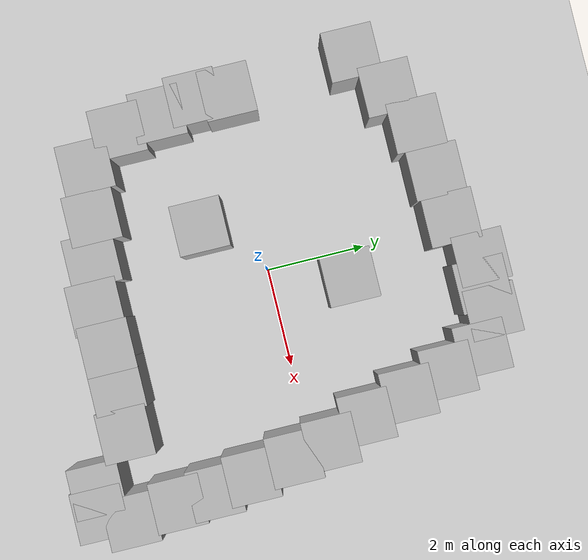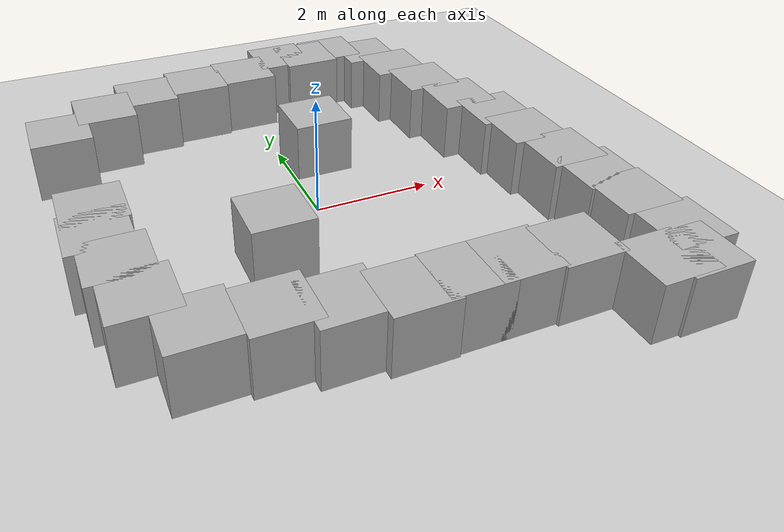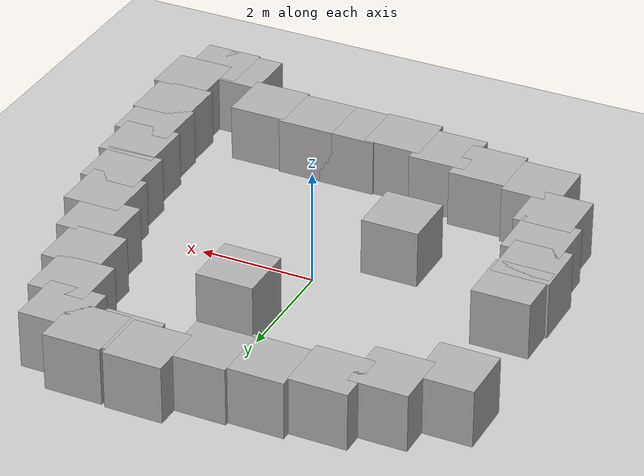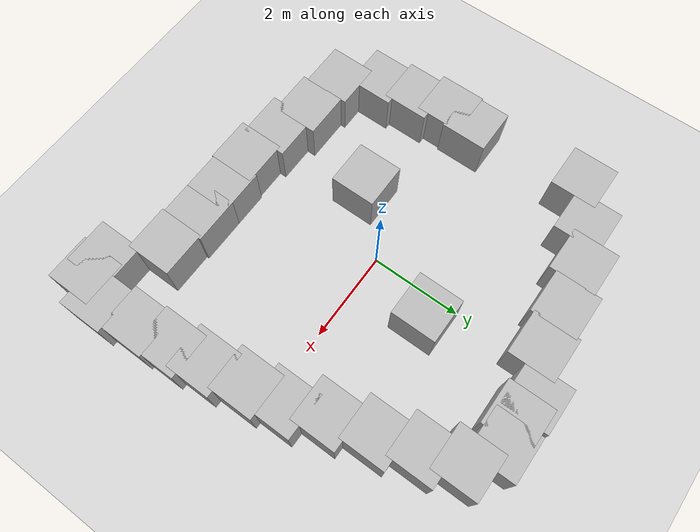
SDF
<sdf version="1.10">
 <world name="empty">
  <physics name="1ms" type="ignored">
   <max_step_size>0.001</max_step_size>
   <real_time_factor>1</real_time_factor>
   <real_time_update_rate>1000</real_time_update_rate>
  </physics>
  <plugin name="gz::sim::systems::Sensors" filename="gz-sim-sensors-system">
   <render_engine>ogre2</render_engine>
  </plugin>
  <plugin name="gz::sim::systems::Imu" filename="gz-sim-imu-system"/>
  <plugin name="gz::sim::systems::Physics" filename="gz-sim-physics-system"/>
  <plugin name="gz::sim::systems::UserCommands" filename="gz-sim-user-commands-system"/>
  <plugin name="gz::sim::systems::SceneBroadcaster" filename="gz-sim-scene-broadcaster-system"/>
  <plugin name="gz::sim::systems::Contact" filename="gz-sim-contact-system"/>
  <gravity>0 0 -9.8000000000000007</gravity>
  <magnetic_field>5.5644999999999998e-06 2.2875799999999999e-05 -4.2388400000000002e-05</magnetic_field>
  <atmosphere type="adiabatic"/>
  <scene>
   <ambient>0.400000006 0.400000006 0.400000006 1</ambient>
   <background>0.699999988 0.699999988 0.699999988 1</background>
   <shadows>true</shadows>
  </scene>
  <model name="ground_plane">
   <static>true</static>
   <link name="link">
    <collision name="collision">
     <geometry><plane><normal>0 0 1</normal><size>100 100</size></plane></geometry>
    </collision>
    <visual name="visual">
     <geometry><plane><normal>0 0 1</normal><size>100 100</size></plane></geometry>
     <material>
      <ambient>0.800000012 0.800000012 0.800000012 1</ambient>
      <diffuse>0.800000012 0.800000012 0.800000012 1</diffuse>
      <specular>0.800000012 0.800000012 0.800000012 1</specular>
     </material>
    </visual>
    <inertial>
     <mass>1</mass>
     <inertia><ixx>1</ixx><ixy>0</ixy><ixz>0</ixz><iyy>1</iyy><iyz>0</iyz><izz>1</izz></inertia>
    </inertial>
   </link>
  </model>
  <model name="box">
   <pose>2.4895774999609634 3.6772244470831086 0.49999999902639142 -3.6217145079066511e-08 3.4341150604380551e-08 2.4105623660494501e-06</pose>
   <link name="box_link">
    <inertial>
     <inertia><ixx>0.16666</ixx><ixy>0</ixy><ixz>0</ixz><iyy>0.16666</iyy><iyz>0</iyz><izz>0.16666</izz></inertia>
     <mass>1</mass>
    </inertial>
    <collision name="box_collision"><geometry><box><size>1 1 1</size></box></geometry></collision>
    <visual name="box_visual">
     <geometry><box><size>1 1 1</size></box></geometry>
     <material>
      <ambient>0.300000012 0.300000012 0.300000012 1</ambient>
      <diffuse>0.699999988 0.699999988 0.699999988 1</diffuse>
      <specular>1 1 1 1</specular>
     </material>
    </visual>
   </link>
   <static>false</static>
  </model>
  <model name="box_0">
   <pose>3.8410667870849915 -4.2441184577329665 0.49999999970943443 3.698805269873605e-08 3.6447106598337115e-08 -0.00078254199244057329</pose>
   <link name="box_link">
    <inertial>
     <inertia><ixx>0.16666</ixx><ixy>0</ixy><ixz>0</ixz><iyy>0.16666</iyy><iyz>0</iyz><izz>0.16666</izz></inertia>
     <mass>1</mass>
    </inertial>
    <collision name="box_collision"><geometry><box><size>1 1 1</size></box></geometry></collision>
    <visual name="box_visual">
     <geometry><box><size>1 1 1</size></box></geometry>
     <material>
      <ambient>0.300000012 0.300000012 0.300000012 1</ambient>
      <diffuse>0.699999988 0.699999988 0.699999988 1</diffuse>
      <specular>1 1 1 1</specular>
     </material>
    </visual>
   </link>
   <static>false</static>
  </model>
  <model name="box_1">
   <pose>3.5656180335136192 0.40804610868801922 0.49999999085560831 -2.0748962738558626e-08 -2.5397110395111737e-09 2.8305122356515753e-06</pose>
   <link name="box_link">
    <inertial>
     <inertia><ixx>0.16666</ixx><ixy>0</ixy><ixz>0</ixz><iyy>0.16666</iyy><iyz>0</iyz><izz>0.16666</izz></inertia>
     <mass>1</mass>
    </inertial>
    <collision name="box_collision"><geometry><box><size>1 1 1</size></box></geometry></collision>
    <visual name="box_visual">
     <geometry><box><size>1 1 1</size></box></geometry>
     <material>
      <ambient>0.300000012 0.300000012 0.300000012 1</ambient>
      <diffuse>0.699999988 0.699999988 0.699999988 1</diffuse>
      <specular>1 1 1 1</specular>
     </material>
    </visual>
   </link>
   <static>false</static>
  </model>
  <model name="box_2">
   <pose>-3.5158625221833271 0.058626025178388365 0.4999999901875859 -1.9388648813108023e-08 -1.4428468250252572e-09 9.7461046188126451e-10</pose>
   <link name="box_link">
    <inertial>
     <inertia><ixx>0.16666</ixx><ixy>0</ixy><ixz>0</ixz><iyy>0.16666</iyy><iyz>0</iyz><izz>0.16666</izz></inertia>
     <mass>1</mass>
    </inertial>
    <collision name="box_collision"><geometry><box><size>1 1 1</size></box></geometry></collision>
    <visual name="box_visual">
     <geometry><box><size>1 1 1</size></box></geometry>
     <material>
      <ambient>0.300000012 0.300000012 0.300000012 1</ambient>
      <diffuse>0.699999988 0.699999988 0.699999988 1</diffuse>
      <specular>1 1 1 1</specular>
     </material>
    </visual>
   </link>
   <static>false</static>
  </model>
  <model name="box_3">
   <pose>-1.7539833450386821 -3.0597939579707525 0.49999999089219721 1.0735201924737639e-09 -1.9799408317527005e-08 -9.0916464876835481e-07</pose>
   <link name="box_link">
    <inertial>
     <inertia><ixx>0.16666</ixx><ixy>0</ixy><ixz>0</ixz><iyy>0.16666</iyy><iyz>0</iyz><izz>0.16666</izz></inertia>
     <mass>1</mass>
    </inertial>
    <collision name="box_collision"><geometry><box><size>1 1 1</size></box></geometry></collision>
    <visual name="box_visual">
     <geometry><box><size>1 1 1</size></box></geometry>
     <material>
      <ambient>0.300000012 0.300000012 0.300000012 1</ambient>
      <diffuse>0.699999988 0.699999988 0.699999988 1</diffuse>
      <specular>1 1 1 1</specular>
     </material>
    </visual>
   </link>
   <static>false</static>
  </model>
  <model name="box_4">
   <pose>-0.94588490146788873 -3.2497153619152641 0.49999999111726989 -5.4677123721287348e-09 -2.1137585291771425e-08 -1.1277104041626293e-06</pose>
   <link name="box_link">
    <inertial>
     <inertia><ixx>0.16666</ixx><ixy>0</ixy><ixz>0</ixz><iyy>0.16666</iyy><iyz>0</iyz><izz>0.16666</izz></inertia>
     <mass>1</mass>
    </inertial>
    <collision name="box_collision"><geometry><box><size>1 1 1</size></box></geometry></collision>
    <visual name="box_visual">
     <geometry><box><size>1 1 1</size></box></geometry>
     <material>
      <ambient>0.300000012 0.300000012 0.300000012 1</ambient>
      <diffuse>0.699999988 0.699999988 0.699999988 1</diffuse>
      <specular>1 1 1 1</specular>
     </material>
    </visual>
   </link>
   <static>false</static>
  </model>
  <model name="box_5">
   <pose>-0.054872494914060259 -3.3993186045280517 0.49999999098296832 -2.7665431790794062e-09 -2.0610834983272455e-08 -4.9695777529834269e-07</pose>
   <link name="box_link">
    <inertial>
     <inertia><ixx>0.16666</ixx><ixy>0</ixy><ixz>0</ixz><iyy>0.16666</iyy><iyz>0</iyz><izz>0.16666</izz></inertia>
     <mass>1</mass>
    </inertial>
    <collision name="box_collision"><geometry><box><size>1 1 1</size></box></geometry></collision>
    <visual name="box_visual">
     <geometry><box><size>1 1 1</size></box></geometry>
     <material>
      <ambient>0.300000012 0.300000012 0.300000012 1</ambient>
      <diffuse>0.699999988 0.699999988 0.699999988 1</diffuse>
      <specular>1 1 1 1</specular>
     </material>
    </visual>
   </link>
   <static>false</static>
  </model>
  <model name="box_6">
   <pose>0.76712087597909684 -3.366074278492901 0.49999999132577522 -4.1797082132240551e-09 -2.0195175914891509e-08 -1.5695572689369062e-07</pose>
   <link name="box_link">
    <inertial>
     <inertia><ixx>0.16666</ixx><ixy>0</ixy><ixz>0</ixz><iyy>0.16666</iyy><iyz>0</iyz><izz>0.16666</izz></inertia>
     <mass>1</mass>
    </inertial>
    <collision name="box_collision"><geometry><box><size>1 1 1</size></box></geometry></collision>
    <visual name="box_visual">
     <geometry><box><size>1 1 1</size></box></geometry>
     <material>
      <ambient>0.300000012 0.300000012 0.300000012 1</ambient>
      <diffuse>0.699999988 0.699999988 0.699999988 1</diffuse>
      <specular>1 1 1 1</specular>
     </material>
    </visual>
   </link>
   <static>false</static>
  </model>
  <model name="box_7">
   <pose>1.5353721529345246 -3.3660746324488531 0.49999999038569909 -2.1234226976456613e-09 1.1025196663483077e-08 -5.1584893188546129e-07</pose>
   <link name="box_link">
    <inertial>
     <inertia><ixx>0.16666</ixx><ixy>0</ixy><ixz>0</ixz><iyy>0.16666</iyy><iyz>0</iyz><izz>0.16666</izz></inertia>
     <mass>1</mass>
    </inertial>
    <collision name="box_collision"><geometry><box><size>1 1 1</size></box></geometry></collision>
    <visual name="box_visual">
     <geometry><box><size>1 1 1</size></box></geometry>
     <material>
      <ambient>0.300000012 0.300000012 0.300000012 1</ambient>
      <diffuse>0.699999988 0.699999988 0.699999988 1</diffuse>
      <specular>1 1 1 1</specular>
     </material>
    </visual>
   </link>
   <static>false</static>
  </model>
  <model name="box_8">
   <pose>2.4685857074372279 -3.4159424272853474 0.49999999289496067 1.0909974209116592e-08 2.5063131714292557e-08 -2.564235994020764e-06</pose>
   <link name="box_link">
    <inertial>
     <inertia><ixx>0.16666</ixx><ixy>0</ixy><ixz>0</ixz><iyy>0.16666</iyy><iyz>0</iyz><izz>0.16666</izz></inertia>
     <mass>1</mass>
    </inertial>
    <collision name="box_collision"><geometry><box><size>1 1 1</size></box></geometry></collision>
    <visual name="box_visual">
     <geometry><box><size>1 1 1</size></box></geometry>
     <material>
      <ambient>0.300000012 0.300000012 0.300000012 1</ambient>
      <diffuse>0.699999988 0.699999988 0.699999988 1</diffuse>
      <specular>1 1 1 1</specular>
     </material>
    </visual>
   </link>
   <static>false</static>
  </model>
  <model name="box_9">
   <pose>3.3810856209094107 -4.197084566381533 0.4999999936884123 1.4570843982245764e-08 2.7038780510083556e-08 -0.0007018421291031682</pose>
   <link name="box_link">
    <inertial>
     <inertia><ixx>0.16666</ixx><ixy>0</ixy><ixz>0</ixz><iyy>0.16666</iyy><iyz>0</iyz><izz>0.16666</izz></inertia>
     <mass>1</mass>
    </inertial>
    <collision name="box_collision"><geometry><box><size>1 1 1</size></box></geometry></collision>
    <visual name="box_visual">
     <geometry><box><size>1 1 1</size></box></geometry>
     <material>
      <ambient>0.300000012 0.300000012 0.300000012 1</ambient>
      <diffuse>0.699999988 0.699999988 0.699999988 1</diffuse>
      <specular>1 1 1 1</specular>
     </material>
    </visual>
   </link>
   <static>false</static>
  </model>
  <model name="box_10">
   <pose>4.113945278892599 -3.6861781313478654 0.49999999922836424 3.4918848573554756e-08 3.6162732809854069e-08 -0.00054425083093172688</pose>
   <link name="box_link">
    <inertial>
     <inertia><ixx>0.16666</ixx><ixy>0</ixy><ixz>0</ixz><iyy>0.16666</iyy><iyz>0</iyz><izz>0.16666</izz></inertia>
     <mass>1</mass>
    </inertial>
    <collision name="box_collision"><geometry><box><size>1 1 1</size></box></geometry></collision>
    <visual name="box_visual">
     <geometry><box><size>1 1 1</size></box></geometry>
     <material>
      <ambient>0.300000012 0.300000012 0.300000012 1</ambient>
      <diffuse>0.699999988 0.699999988 0.699999988 1</diffuse>
      <specular>1 1 1 1</specular>
     </material>
    </visual>
   </link>
   <static>false</static>
  </model>
  <model name="box_11">
   <pose>4.0060449441653381 -2.7370483451214596 0.49999999324963734 2.4537236314587417e-08 1.1043794665835629e-08 2.0028092149340494e-06</pose>
   <link name="box_link">
    <inertial>
     <inertia><ixx>0.16666</ixx><ixy>0</ixy><ixz>0</ixz><iyy>0.16666</iyy><iyz>0</iyz><izz>0.16666</izz></inertia>
     <mass>1</mass>
    </inertial>
    <collision name="box_collision"><geometry><box><size>1 1 1</size></box></geometry></collision>
    <visual name="box_visual">
     <geometry><box><size>1 1 1</size></box></geometry>
     <material>
      <ambient>0.300000012 0.300000012 0.300000012 1</ambient>
      <diffuse>0.699999988 0.699999988 0.699999988 1</diffuse>
      <specular>1 1 1 1</specular>
     </material>
    </visual>
   </link>
   <static>false</static>
  </model>
  <model name="box_12">
   <pose>3.9561759659851208 -1.9878247740237363 0.49999999211818319 2.3136831669488168e-08 7.3328224253173795e-09 2.1571413591220281e-06</pose>
   <link name="box_link">
    <inertial>
     <inertia><ixx>0.16666</ixx><ixy>0</ixy><ixz>0</ixz><iyy>0.16666</iyy><iyz>0</iyz><izz>0.16666</izz></inertia>
     <mass>1</mass>
    </inertial>
    <collision name="box_collision"><geometry><box><size>1 1 1</size></box></geometry></collision>
    <visual name="box_visual">
     <geometry><box><size>1 1 1</size></box></geometry>
     <material>
      <ambient>0.300000012 0.300000012 0.300000012 1</ambient>
      <diffuse>0.699999988 0.699999988 0.699999988 1</diffuse>
      <specular>1 1 1 1</specular>
     </material>
    </visual>
   </link>
   <static>false</static>
  </model>
  <model name="box_13">
   <pose>3.8398192763980843 -1.2386607954477116 0.49999999025414649 1.9215734561797646e-08 9.2965651722932016e-10 2.2979211257748229e-06</pose>
   <link name="box_link">
    <inertial>
     <inertia><ixx>0.16666</ixx><ixy>0</ixy><ixz>0</ixz><iyy>0.16666</iyy><iyz>0</iyz><izz>0.16666</izz></inertia>
     <mass>1</mass>
    </inertial>
    <collision name="box_collision"><geometry><box><size>1 1 1</size></box></geometry></collision>
    <visual name="box_visual">
     <geometry><box><size>1 1 1</size></box></geometry>
     <material>
      <ambient>0.300000012 0.300000012 0.300000012 1</ambient>
      <diffuse>0.699999988 0.699999988 0.699999988 1</diffuse>
      <specular>1 1 1 1</specular>
     </material>
    </visual>
   </link>
   <static>false</static>
  </model>
  <model name="box_14">
   <pose>3.6902159033879607 -0.35683577533925648 0.49999999029249476 -8.2881982788761249e-11 1.231340468888389e-10 2.0673634765151425e-06</pose>
   <link name="box_link">
    <inertial>
     <inertia><ixx>0.16666</ixx><ixy>0</ixy><ixz>0</ixz><iyy>0.16666</iyy><iyz>0</iyz><izz>0.16666</izz></inertia>
     <mass>1</mass>
    </inertial>
    <collision name="box_collision"><geometry><box><size>1 1 1</size></box></geometry></collision>
    <visual name="box_visual">
     <geometry><box><size>1 1 1</size></box></geometry>
     <material>
      <ambient>0.300000012 0.300000012 0.300000012 1</ambient>
      <diffuse>0.699999988 0.699999988 0.699999988 1</diffuse>
      <specular>1 1 1 1</specular>
     </material>
    </visual>
   </link>
   <static>false</static>
  </model>
  <model name="box_15">
   <pose>3.25802966043956 1.1909794590610052 0.49999999035020004 -2.025311362931936e-08 -9.8880816181965165e-10 3.0484601319128207e-06</pose>
   <link name="box_link">
    <inertial>
     <inertia><ixx>0.16666</ixx><ixy>0</ixy><ixz>0</ixz><iyy>0.16666</iyy><iyz>0</iyz><izz>0.16666</izz></inertia>
     <mass>1</mass>
    </inertial>
    <collision name="box_collision"><geometry><box><size>1 1 1</size></box></geometry></collision>
    <visual name="box_visual">
     <geometry><box><size>1 1 1</size></box></geometry>
     <material>
      <ambient>0.300000012 0.300000012 0.300000012 1</ambient>
      <diffuse>0.699999988 0.699999988 0.699999988 1</diffuse>
      <specular>1 1 1 1</specular>
     </material>
    </visual>
   </link>
   <static>false</static>
  </model>
  <model name="box_16">
   <pose>3.0086912152524441 2.0892978303918057 0.49999999132499184 -2.1472895795405352e-08 -4.1371112489020972e-09 2.8624666477653158e-06</pose>
   <link name="box_link">
    <inertial>
     <inertia><ixx>0.16666</ixx><ixy>0</ixy><ixz>0</ixz><iyy>0.16666</iyy><iyz>0</iyz><izz>0.16666</izz></inertia>
     <mass>1</mass>
    </inertial>
    <collision name="box_collision"><geometry><box><size>1 1 1</size></box></geometry></collision>
    <visual name="box_visual">
     <geometry><box><size>1 1 1</size></box></geometry>
     <material>
      <ambient>0.300000012 0.300000012 0.300000012 1</ambient>
      <diffuse>0.699999988 0.699999988 0.699999988 1</diffuse>
      <specular>1 1 1 1</specular>
     </material>
    </visual>
   </link>
   <static>false</static>
  </model>
  <model name="box_17">
   <pose>2.7593508850576929 2.932958184337199 0.49999999035575737 -1.9351723475162575e-08 -2.4929556664257152e-10 2.5843340611536795e-06</pose>
   <link name="box_link">
    <inertial>
     <inertia><ixx>0.16666</ixx><ixy>0</ixy><ixz>0</ixz><iyy>0.16666</iyy><iyz>0</iyz><izz>0.16666</izz></inertia>
     <mass>1</mass>
    </inertial>
    <collision name="box_collision"><geometry><box><size>1 1 1</size></box></geometry></collision>
    <visual name="box_visual">
     <geometry><box><size>1 1 1</size></box></geometry>
     <material>
      <ambient>0.300000012 0.300000012 0.300000012 1</ambient>
      <diffuse>0.699999988 0.699999988 0.699999988 1</diffuse>
      <specular>1 1 1 1</specular>
     </material>
    </visual>
   </link>
   <static>false</static>
  </model>
  <model name="box_18">
   <pose>1.8463854279266196 4.0476012976798526 0.49999999109739401 -2.8415955364320708e-09 2.065444016079498e-08 2.5367165765642945e-08</pose>
   <link name="box_link">
    <inertial>
     <inertia><ixx>0.16666</ixx><ixy>0</ixy><ixz>0</ixz><iyy>0.16666</iyy><iyz>0</iyz><izz>0.16666</izz></inertia>
     <mass>1</mass>
    </inertial>
    <collision name="box_collision"><geometry><box><size>1 1 1</size></box></geometry></collision>
    <visual name="box_visual">
     <geometry><box><size>1 1 1</size></box></geometry>
     <material>
      <ambient>0.300000012 0.300000012 0.300000012 1</ambient>
      <diffuse>0.699999988 0.699999988 0.699999988 1</diffuse>
      <specular>1 1 1 1</specular>
     </material>
    </visual>
   </link>
   <static>false</static>
  </model>
  <model name="box_19">
   <pose>1.2972502000059687 3.9811112991213133 0.49999999077961504 -1.9807795794604223e-09 2.0457207227754638e-08 1.4562131869526943e-08</pose>
   <link name="box_link">
    <inertial>
     <inertia><ixx>0.16666</ixx><ixy>0</ixy><ixz>0</ixz><iyy>0.16666</iyy><iyz>0</iyz><izz>0.16666</izz></inertia>
     <mass>1</mass>
    </inertial>
    <collision name="box_collision"><geometry><box><size>1 1 1</size></box></geometry></collision>
    <visual name="box_visual">
     <geometry><box><size>1 1 1</size></box></geometry>
     <material>
      <ambient>0.300000012 0.300000012 0.300000012 1</ambient>
      <diffuse>0.699999988 0.699999988 0.699999988 1</diffuse>
      <specular>1 1 1 1</specular>
     </material>
    </visual>
   </link>
   <static>false</static>
  </model>
  <model name="box_20">
   <pose>0.78143137713510646 4.0808465037727055 0.49999999015310415 -1.3474995915905774e-10 1.5805398492694316e-08 6.6237540932620729e-08</pose>
   <link name="box_link">
    <inertial>
     <inertia><ixx>0.16666</ixx><ixy>0</ixy><ixz>0</ixz><iyy>0.16666</iyy><iyz>0</iyz><izz>0.16666</izz></inertia>
     <mass>1</mass>
    </inertial>
    <collision name="box_collision"><geometry><box><size>1 1 1</size></box></geometry></collision>
    <visual name="box_visual">
     <geometry><box><size>1 1 1</size></box></geometry>
     <material>
      <ambient>0.300000012 0.300000012 0.300000012 1</ambient>
      <diffuse>0.699999988 0.699999988 0.699999988 1</diffuse>
      <specular>1 1 1 1</specular>
     </material>
    </visual>
   </link>
   <static>false</static>
  </model>
  <model name="box_21">
   <pose>-0.099929310623312881 3.6985280301542027 0.49999999343878132 2.0380993092855112e-10 -1.1228894132005167e-08 1.3176681056227417e-08</pose>
   <link name="box_link">
    <inertial>
     <inertia><ixx>0.16666</ixx><ixy>0</ixy><ixz>0</ixz><iyy>0.16666</iyy><iyz>0</iyz><izz>0.16666</izz></inertia>
     <mass>1</mass>
    </inertial>
    <collision name="box_collision"><geometry><box><size>1 1 1</size></box></geometry></collision>
    <visual name="box_visual">
     <geometry><box><size>1 1 1</size></box></geometry>
     <material>
      <ambient>0.300000012 0.300000012 0.300000012 1</ambient>
      <diffuse>0.699999988 0.699999988 0.699999988 1</diffuse>
      <specular>1 1 1 1</specular>
     </material>
    </visual>
   </link>
   <static>false</static>
  </model>
  <model name="box_22">
   <pose>-1.0477596594460967 3.6320372758152519 0.49999999058951772 1.0573080169782532e-09 -1.7745830350212113e-08 7.1999894972964057e-08</pose>
   <link name="box_link">
    <inertial>
     <inertia><ixx>0.16666</ixx><ixy>0</ixy><ixz>0</ixz><iyy>0.16666</iyy><iyz>0</iyz><izz>0.16666</izz></inertia>
     <mass>1</mass>
    </inertial>
    <collision name="box_collision"><geometry><box><size>1 1 1</size></box></geometry></collision>
    <visual name="box_visual">
     <geometry><box><size>1 1 1</size></box></geometry>
     <material>
      <ambient>0.300000012 0.300000012 0.300000012 1</ambient>
      <diffuse>0.699999988 0.699999988 0.699999988 1</diffuse>
      <specular>1 1 1 1</specular>
     </material>
    </visual>
   </link>
   <static>false</static>
  </model>
  <model name="box_23">
   <pose>-2.0288084045016523 3.4824351357970849 0.49999999042385362 5.8991815627433358e-10 -1.9047658650132409e-08 1.1079469668162176e-07</pose>
   <link name="box_link">
    <inertial>
     <inertia><ixx>0.16666</ixx><ixy>0</ixy><ixz>0</ixz><iyy>0.16666</iyy><iyz>0</iyz><izz>0.16666</izz></inertia>
     <mass>1</mass>
    </inertial>
    <collision name="box_collision"><geometry><box><size>1 1 1</size></box></geometry></collision>
    <visual name="box_visual">
     <geometry><box><size>1 1 1</size></box></geometry>
     <material>
      <ambient>0.300000012 0.300000012 0.300000012 1</ambient>
      <diffuse>0.699999988 0.699999988 0.699999988 1</diffuse>
      <specular>1 1 1 1</specular>
     </material>
    </visual>
   </link>
   <static>false</static>
  </model>
  <model name="box_24">
   <pose>-2.8436201182920322 3.1167379626891649 0.4999999906769691 1.0378187394133009e-09 -1.9678134245259984e-08 1.3717167079952888e-07</pose>
   <link name="box_link">
    <inertial>
     <inertia><ixx>0.16666</ixx><ixy>0</ixy><ixz>0</ixz><iyy>0.16666</iyy><iyz>0</iyz><izz>0.16666</izz></inertia>
     <mass>1</mass>
    </inertial>
    <collision name="box_collision"><geometry><box><size>1 1 1</size></box></geometry></collision>
    <visual name="box_visual">
     <geometry><box><size>1 1 1</size></box></geometry>
     <material>
      <ambient>0.300000012 0.300000012 0.300000012 1</ambient>
      <diffuse>0.699999988 0.699999988 0.699999988 1</diffuse>
      <specular>1 1 1 1</specular>
     </material>
    </visual>
   </link>
   <static>false</static>
  </model>
  <model name="box_25">
   <pose>-3.6749813269274667 2.5848155275501652 0.49999999044476151 -5.6046374760682339e-11 -1.8566772224504792e-08 4.7772184327329627e-08</pose>
   <link name="box_link">
    <inertial>
     <inertia><ixx>0.16666</ixx><ixy>0</ixy><ixz>0</ixz><iyy>0.16666</iyy><iyz>0</iyz><izz>0.16666</izz></inertia>
     <mass>1</mass>
    </inertial>
    <collision name="box_collision"><geometry><box><size>1 1 1</size></box></geometry></collision>
    <visual name="box_visual">
     <geometry><box><size>1 1 1</size></box></geometry>
     <material>
      <ambient>0.300000012 0.300000012 0.300000012 1</ambient>
      <diffuse>0.699999988 0.699999988 0.699999988 1</diffuse>
      <specular>1 1 1 1</specular>
     </material>
    </visual>
   </link>
   <static>false</static>
  </model>
  <model name="box_26">
   <pose>-3.5572341110829773 -0.60646018792307466 0.49999999039211396 -1.5357861748225558e-08 -9.8725799648075341e-10 9.7943640062439862e-09</pose>
   <link name="box_link">
    <inertial>
     <inertia><ixx>0.16666</ixx><ixy>0</ixy><ixz>0</ixz><iyy>0.16666</iyy><iyz>0</iyz><izz>0.16666</izz></inertia>
     <mass>1</mass>
    </inertial>
    <collision name="box_collision"><geometry><box><size>1 1 1</size></box></geometry></collision>
    <visual name="box_visual">
     <geometry><box><size>1 1 1</size></box></geometry>
     <material>
      <ambient>0.300000012 0.300000012 0.300000012 1</ambient>
      <diffuse>0.699999988 0.699999988 0.699999988 1</diffuse>
      <specular>1 1 1 1</specular>
     </material>
    </visual>
   </link>
   <static>false</static>
  </model>
  <model name="box_27">
   <pose>-3.4076307306123321 -1.3547698772580363 0.49999999638798537 4.5774530715921163e-09 1.6681782804283765e-12 2.2281291699345676e-09</pose>
   <link name="box_link">
    <inertial>
     <inertia><ixx>0.16666</ixx><ixy>0</ixy><ixz>0</ixz><iyy>0.16666</iyy><iyz>0</iyz><izz>0.16666</izz></inertia>
     <mass>1</mass>
    </inertial>
    <collision name="box_collision"><geometry><box><size>1 1 1</size></box></geometry></collision>
    <visual name="box_visual">
     <geometry><box><size>1 1 1</size></box></geometry>
     <material>
      <ambient>0.300000012 0.300000012 0.300000012 1</ambient>
      <diffuse>0.699999988 0.699999988 0.699999988 1</diffuse>
      <specular>1 1 1 1</specular>
     </material>
    </visual>
   </link>
   <static>false</static>
  </model>
  <model name="box_28">
   <pose>-3.2746505503449468 -2.1861661727831008 0.49999999141071183 1.8389765278782309e-08 -1.6124763292685848e-09 5.5383596606111464e-08</pose>
   <link name="box_link">
    <inertial>
     <inertia><ixx>0.16666</ixx><ixy>0</ixy><ixz>0</ixz><iyy>0.16666</iyy><iyz>0</iyz><izz>0.16666</izz></inertia>
     <mass>1</mass>
    </inertial>
    <collision name="box_collision"><geometry><box><size>1 1 1</size></box></geometry></collision>
    <visual name="box_visual">
     <geometry><box><size>1 1 1</size></box></geometry>
     <material>
      <ambient>0.300000012 0.300000012 0.300000012 1</ambient>
      <diffuse>0.699999988 0.699999988 0.699999988 1</diffuse>
      <specular>1 1 1 1</specular>
     </material>
    </visual>
   </link>
   <static>false</static>
  </model>
  <model name="box_29">
   <pose>-2.7439758312364484 -2.9510193517218286 0.49999999654344185 3.0629919675148754e-08 -2.5062762630269931e-08 1.3769356632171707e-07</pose>
   <link name="box_link">
    <inertial>
     <inertia><ixx>0.16666</ixx><ixy>0</ixy><ixz>0</ixz><iyy>0.16666</iyy><iyz>0</iyz><izz>0.16666</izz></inertia>
     <mass>1</mass>
    </inertial>
    <collision name="box_collision"><geometry><box><size>1 1 1</size></box></geometry></collision>
    <visual name="box_visual">
     <geometry><box><size>1 1 1</size></box></geometry>
     <material>
      <ambient>0.300000012 0.300000012 0.300000012 1</ambient>
      <diffuse>0.699999988 0.699999988 0.699999988 1</diffuse>
      <specular>1 1 1 1</specular>
     </material>
    </visual>
   </link>
   <static>false</static>
  </model>
  <model name="box_30">
   <pose>-1.0970905688119461 -1.0721553317124792 0.49999999990199806 6.2287739151293738e-22 9.3279666454713669e-22 -3.6315533669320137e-22</pose>
   <link name="box_link">
    <inertial>
     <inertia><ixx>0.16666</ixx><ixy>0</ixy><ixz>0</ixz><iyy>0.16666</iyy><iyz>0</iyz><izz>0.16666</izz></inertia>
     <mass>1</mass>
    </inertial>
    <collision name="box_collision"><geometry><box><size>1 1 1</size></box></geometry></collision>
    <visual name="box_visual">
     <geometry><box><size>1 1 1</size></box></geometry>
     <material>
      <ambient>0.300000012 0.300000012 0.300000012 1</ambient>
      <diffuse>0.699999988 0.699999988 0.699999988 1</diffuse>
      <specular>1 1 1 1</specular>
     </material>
    </visual>
   </link>
   <static>false</static>
  </model>
  <model name="box_31">
   <pose>0.54854731522460198 1.5209679649335957 0.49999999990199806 8.9355536231294294e-22 1.8361400619508281e-21 3.4621580403157222e-22</pose>
   <link name="box_link">
    <inertial>
     <inertia><ixx>0.16666</ixx><ixy>0</ixy><ixz>0</ixz><iyy>0.16666</iyy><iyz>0</iyz><izz>0.16666</izz></inertia>
     <mass>1</mass>
    </inertial>
    <collision name="box_collision"><geometry><box><size>1 1 1</size></box></geometry></collision>
    <visual name="box_visual">
     <geometry><box><size>1 1 1</size></box></geometry>
     <material>
      <ambient>0.300000012 0.300000012 0.300000012 1</ambient>
      <diffuse>0.699999988 0.699999988 0.699999988 1</diffuse>
      <specular>1 1 1 1</specular>
     </material>
    </visual>
   </link>
   <static>false</static>
  </model>
  <light name="sun" type="directional">
   <pose>0 0 10 0 0 0</pose>
   <intensity>1</intensity>
   <direction>-0.5 0.10000000000000001 -0.90000000000000002</direction>
   <diffuse>0.800000012 0.800000012 0.800000012 1</diffuse>
   <specular>0.200000003 0.200000003 0.200000003 1</specular>
   <attenuation>
    <range>1000</range>
    <linear>0.0099999997764825821</linear>
    <constant>0.89999997615814209</constant>
    <quadratic>0.0010000000474974513</quadratic>
   </attenuation>
   <spot><inner_angle>0</inner_angle><outer_angle>0</outer_angle><falloff>0</falloff></spot>
  </light>
 </world>
</sdf>
